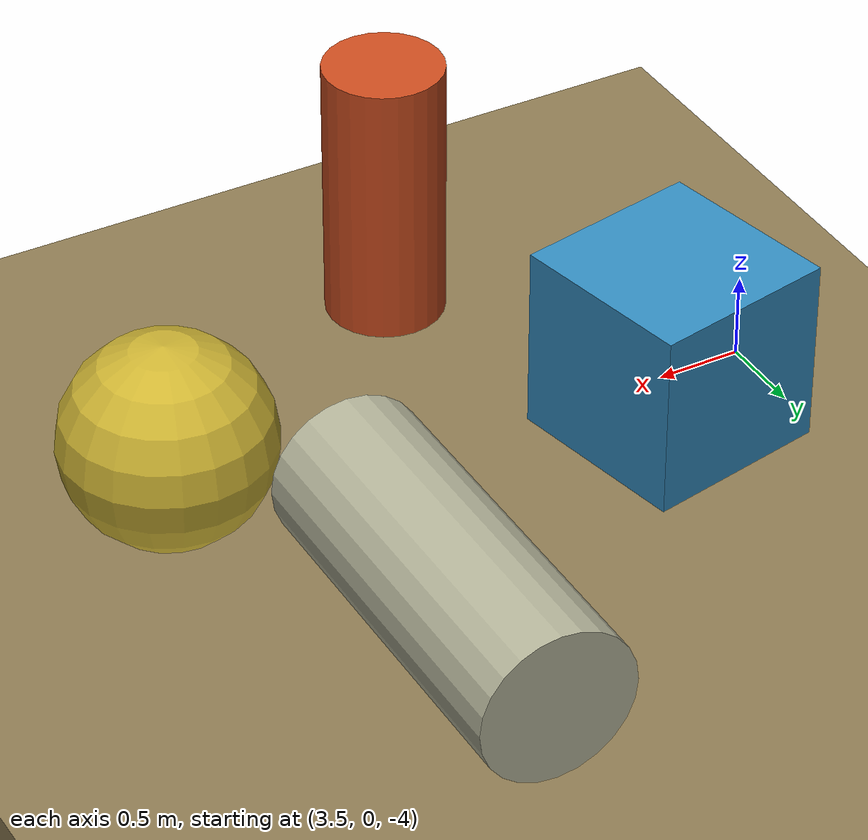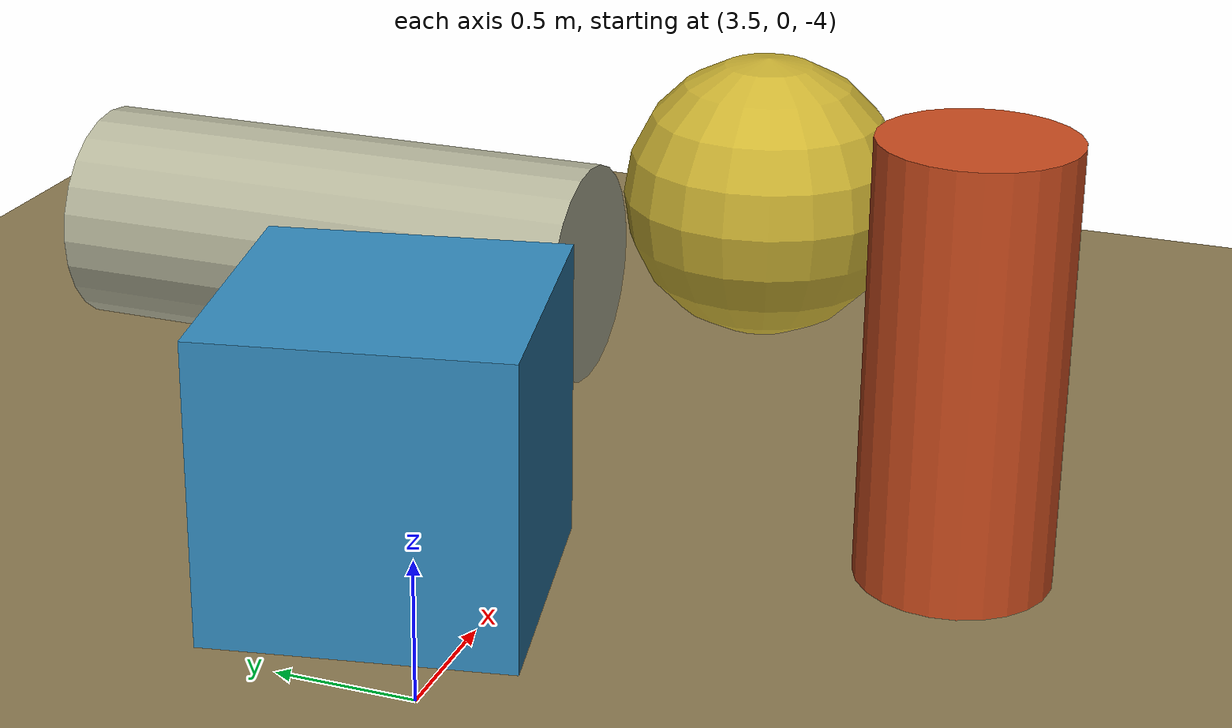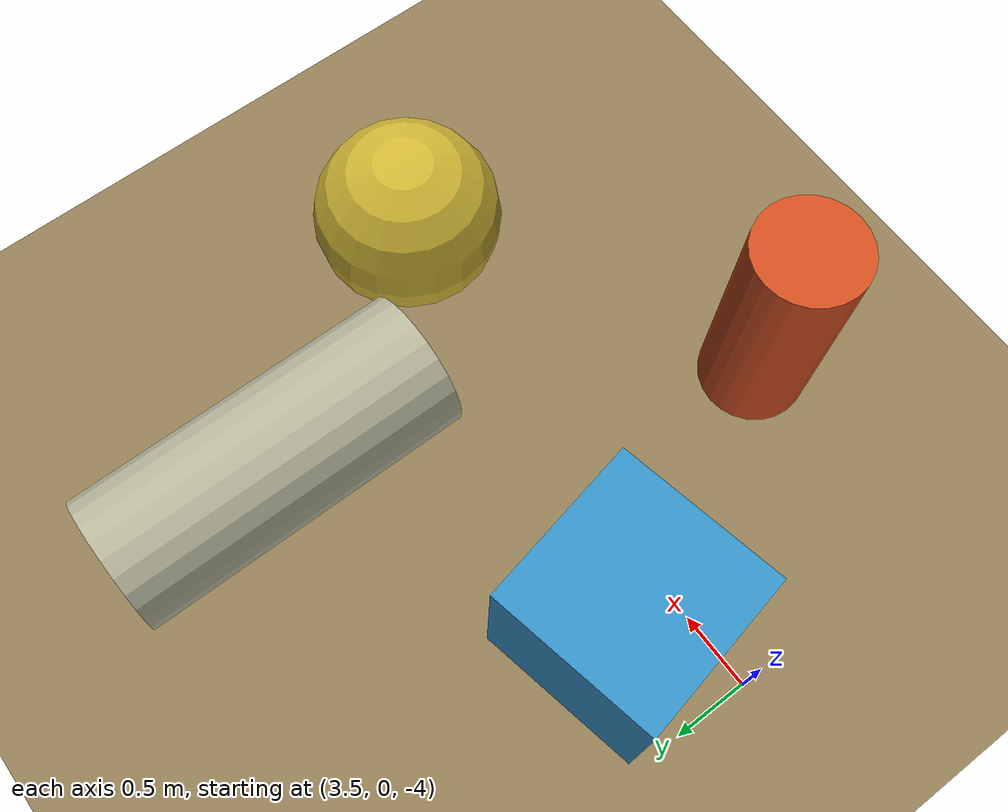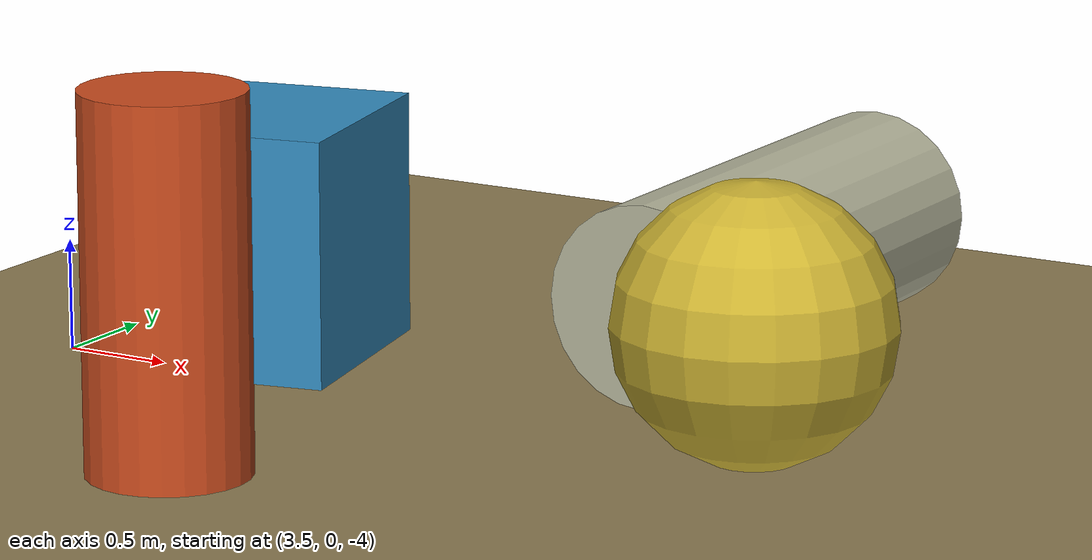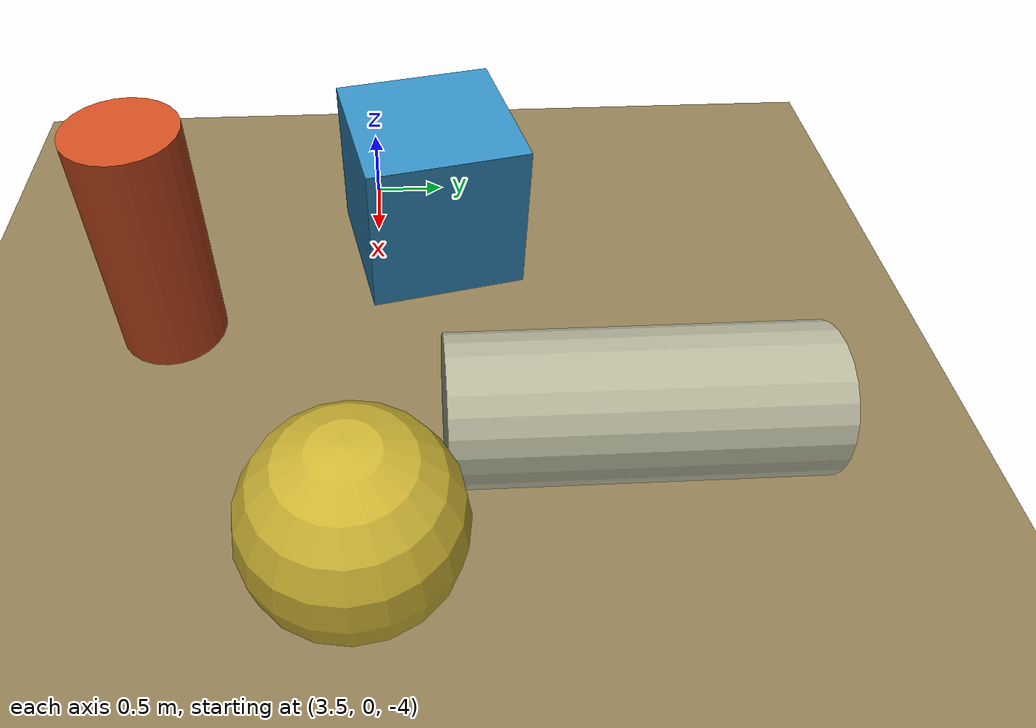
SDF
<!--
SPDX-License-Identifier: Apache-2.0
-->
<sdf version="1.10">
 <world name="shallow_underwater">
  <policies><include_gui_default_plugins>false</include_gui_default_plugins></policies>
  <physics name="default" type="ignored">
   <max_step_size>.002</max_step_size>
   <real_time_factor>1</real_time_factor>
  </physics>
  <plugin filename="gz-sim-physics-system" name="gz::sim::systems::Physics"/>
  <plugin filename="gz-sim-user-commands-system" name="gz::sim::systems::UserCommands"/>
  <plugin filename="gz-sim-scene-broadcaster-system" name="gz::sim::systems::SceneBroadcaster"/>
  <plugin filename="gz-sim-imu-system" name="gz::sim::systems::Imu"/>
  <plugin filename="gz-sim-sensors-system" name="gz::sim::systems::Sensors">
   <render_engine>ogre2</render_engine>
  </plugin>
  <plugin filename="libmultibeam_sonar_system" name="custom::MultibeamSonarSystem"/>
  <plugin filename="gz-sim-buoyancy-system" name="gz::sim::systems::Buoyancy">
   <graded_buoyancy>
    <default_density>1025</default_density>
    <density_change><above_depth>0</above_depth><density>1</density></density_change>
   </graded_buoyancy>
  </plugin>
  <plugin filename="posim_underwater" name="posim::Underwater">
   <session_nonce>shallow_underwater</session_nonce>
   <initial_settings>1 0 1 1 0 0 1 1 1 1 1 10 5</initial_settings>
  </plugin>
  <light name="sun" type="directional">
   <diffuse>1 1 .95 1</diffuse>
   <specular>.3 .3 .3 1</specular>
   <direction>.3 .2 -1</direction>
  </light>
  <scene><grid>false</grid><ambient>.35 .35 .4 1</ambient><background>.55 .72 .85 1</background></scene>
  <spherical_coordinates>
   <surface_model>EARTH_WGS84</surface_model>
   <latitude_deg>35.074823</latitude_deg>
   <longitude_deg>129.084798</longitude_deg>
   <elevation>0</elevation>
   <heading_deg>0</heading_deg>
  </spherical_coordinates>
  <model name="seabed">
   <static>true</static>
   <pose>0 0 -4.1 0 0 0</pose>
   <link name="link">
    <collision name="seabed"><geometry><box><size>200 200 .2</size></box></geometry></collision>
    <visual name="seabed">
     <geometry><box><size>200 200 .2</size></box></geometry>
     <material>
      <ambient>.55 .48 .32 1</ambient>
      <diffuse>.55 .48 .32 1</diffuse>
      <pbr><metal><roughness>.75</roughness><metalness>0</metalness></metal></pbr>
     </material>
    </visual>
   </link>
  </model>
  <model name="inspection_pillar">
   <static>true</static>
   <pose>5 -1.4 -3.2 0 0 0</pose>
   <link name="link">
    <collision name="inspection_pillar">
     <geometry><cylinder><radius>.35</radius><length>1.6</length></cylinder></geometry>
    </collision>
    <visual name="inspection_pillar">
     <geometry><cylinder><radius>.35</radius><length>1.6</length></cylinder></geometry>
     <material>
      <ambient>.8 .3 .12 1</ambient>
      <diffuse>.8 .3 .12 1</diffuse>
      <pbr><metal><roughness>.75</roughness><metalness>0</metalness></metal></pbr>
     </material>
    </visual>
   </link>
  </model>
  <model name="inspection_box">
   <static>true</static>
   <pose>4.2 .4 -3.45 0 0 .2</pose>
   <link name="link">
    <collision name="inspection_box"><geometry><box><size>1.1 1.1 1.1</size></box></geometry></collision>
    <visual name="inspection_box">
     <geometry><box><size>1.1 1.1 1.1</size></box></geometry>
     <material>
      <ambient>.2 .55 .75 1</ambient>
      <diffuse>.2 .55 .75 1</diffuse>
      <pbr><metal><roughness>.75</roughness><metalness>0</metalness></metal></pbr>
     </material>
    </visual>
   </link>
  </model>
  <model name="inspection_pipe">
   <static>true</static>
   <pose>6.2 1.5 -3.55 1.57079632679 0 0</pose>
   <link name="link">
    <collision name="inspection_pipe">
     <geometry><cylinder><radius>.45</radius><length>2.2</length></cylinder></geometry>
    </collision>
    <visual name="inspection_pipe">
     <geometry><cylinder><radius>.45</radius><length>2.2</length></cylinder></geometry>
     <material>
      <ambient>.7 .7 .6 1</ambient>
      <diffuse>.7 .7 .6 1</diffuse>
      <pbr><metal><roughness>.75</roughness><metalness>0</metalness></metal></pbr>
     </material>
    </visual>
   </link>
  </model>
  <model name="inspection_sphere">
   <static>true</static>
   <pose>7 -.1 -3.4 0 0 0</pose>
   <link name="link">
    <collision name="inspection_sphere"><geometry><sphere><radius>.6</radius></sphere></geometry></collision>
    <visual name="inspection_sphere">
     <geometry><sphere><radius>.6</radius></sphere></geometry>
     <material>
      <ambient>.8 .7 .2 1</ambient>
      <diffuse>.8 .7 .2 1</diffuse>
      <pbr><metal><roughness>.75</roughness><metalness>0</metalness></metal></pbr>
     </material>
    </visual>
   </link>
  </model>
 </world>
</sdf>
